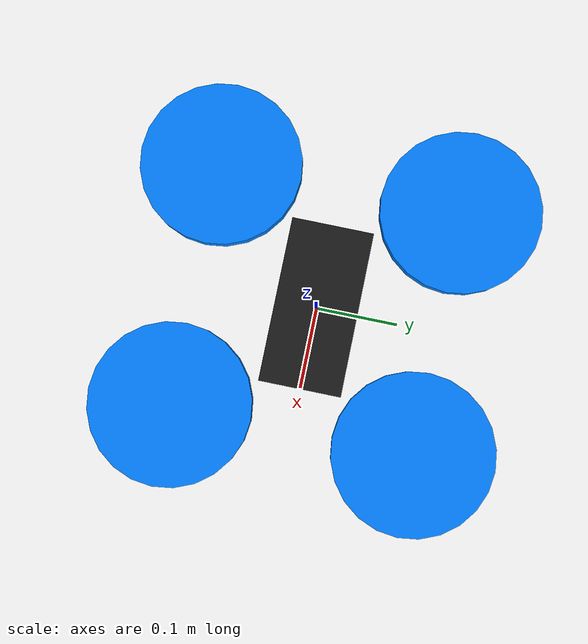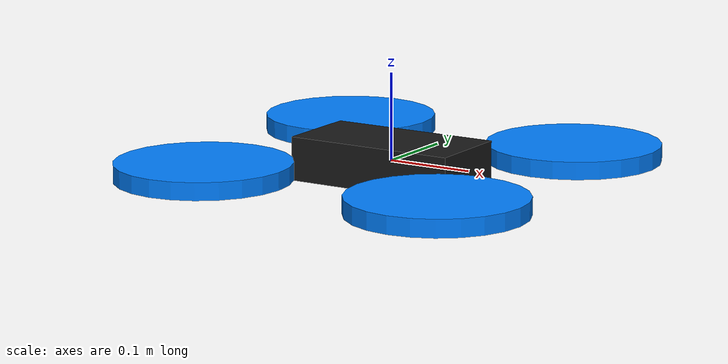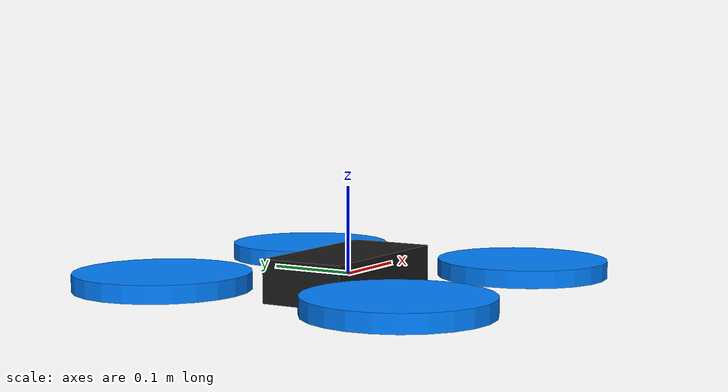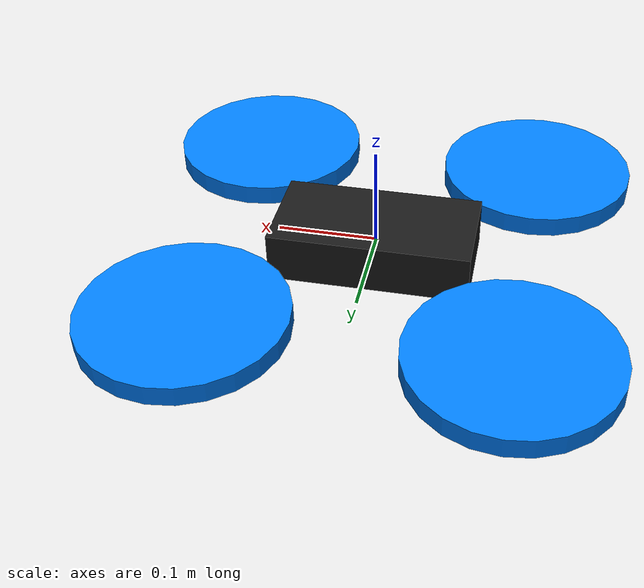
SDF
<?xml version="1.0" ?>
<sdf version="1.10">
  <model name="x3">
    <link name="base_link">
      <inertial>
        <mass>1.0</mass>
        <inertia>
          <ixx>0.01</ixx><ixy>0</ixy><ixz>0</ixz>
          <iyy>0.01</iyy><iyz>0</iyz><izz>0.02</izz>
        </inertia>
      </inertial>

      <visual name="body_visual">
        <geometry><box><size>0.2 0.1 0.05</size></box></geometry>
        <material><ambient>0.1 0.1 0.1 1</ambient><diffuse>0.1 0.1 0.1 1</diffuse></material>
      </visual>

      <visual name="rotor_0">
        <pose>0.15 0.15 0 0 0 0</pose>
        <geometry><cylinder><radius>0.1</radius><length>0.02</length></cylinder></geometry>
        <material><ambient>0 0.5 1 1</ambient><diffuse>0 0.5 1 1</diffuse></material>
      </visual>
      <visual name="rotor_1">
        <pose>-0.15 0.15 0 0 0 0</pose>
        <geometry><cylinder><radius>0.1</radius><length>0.02</length></cylinder></geometry>
        <material><ambient>0 0.5 1 1</ambient><diffuse>0 0.5 1 1</diffuse></material>
      </visual>
      <visual name="rotor_2">
        <pose>0.15 -0.15 0 0 0 0</pose>
        <geometry><cylinder><radius>0.1</radius><length>0.02</length></cylinder></geometry>
        <material><ambient>0 0.5 1 1</ambient><diffuse>0 0.5 1 1</diffuse></material>
      </visual>
      <visual name="rotor_3">
        <pose>-0.15 -0.15 0 0 0 0</pose>
        <geometry><cylinder><radius>0.1</radius><length>0.02</length></cylinder></geometry>
        <material><ambient>0 0.5 1 1</ambient><diffuse>0 0.5 1 1</diffuse></material>
      </visual>

     <collision name="collision">
  <geometry>
    <box><size>0.4 0.4 0.1</size></box>
  </geometry>
  <surface>
    <contact>
      <ode>
        <min_depth>0.001</min_depth>
        <max_vel>0</max_vel>
      </ode>
    </contact>
  </surface>
</collision>

      <sensor name="camera" type="camera">
        <pose>0.2 0 0 0 0 0</pose>
        <always_on>1</always_on>
        <update_rate>30</update_rate>
        <visualize>true</visualize>
        <topic>camera</topic>
      </sensor>
    </link>
    <plugin filename="gz-sim-velocity-control-system" name="gz::sim::systems::VelocityControl"/>
  </model>
</sdf>
